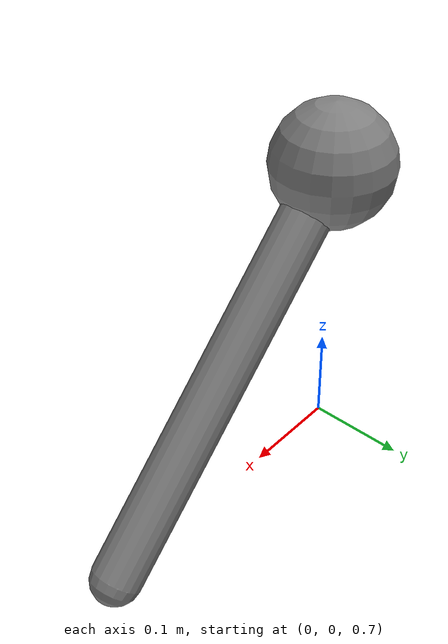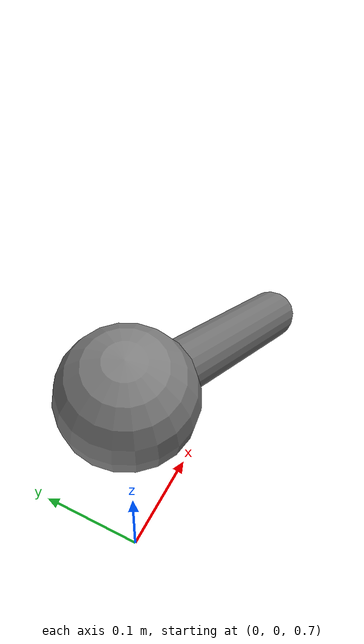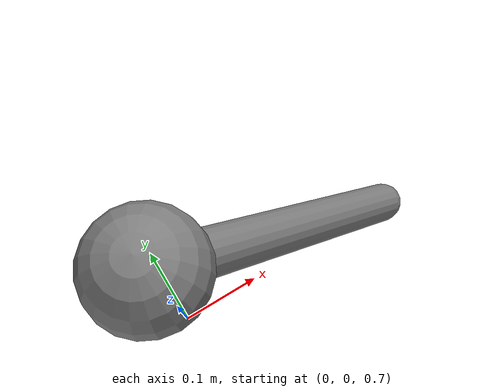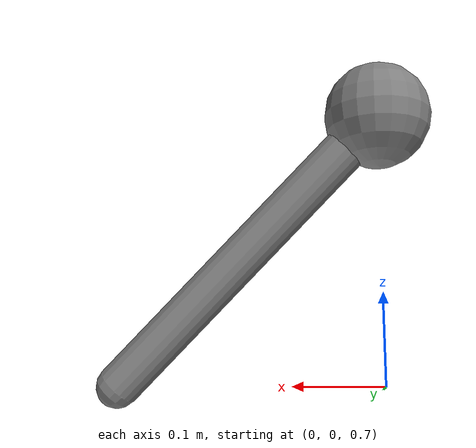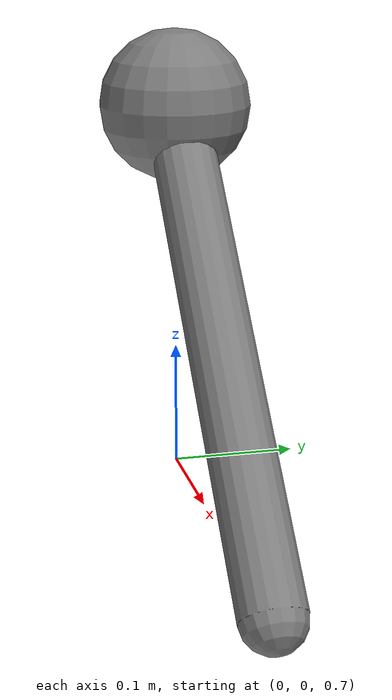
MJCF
<mujoco model="tutorial_pendulum">
  <compiler angle="radian"/>
  <option timestep="0.01" gravity="0 0 -9.81"/>
  <worldbody>
    <body name="mount" pos="0 0 1">
      <geom name="mount_shape" type="sphere" size="0.06" mass="1"/>
      <body name="pendulum" pos="0 0 0">
        <joint name="hinge" type="hinge" axis="0 1 0" limited="true" range="-1.5 1.5" damping="0.1"/>
        <geom name="rod" type="capsule" fromto="0 0 0 0.3 0 -0.3" size="0.025" mass="0.3"/>
      </body>
    </body>
  </worldbody>
</mujoco>
